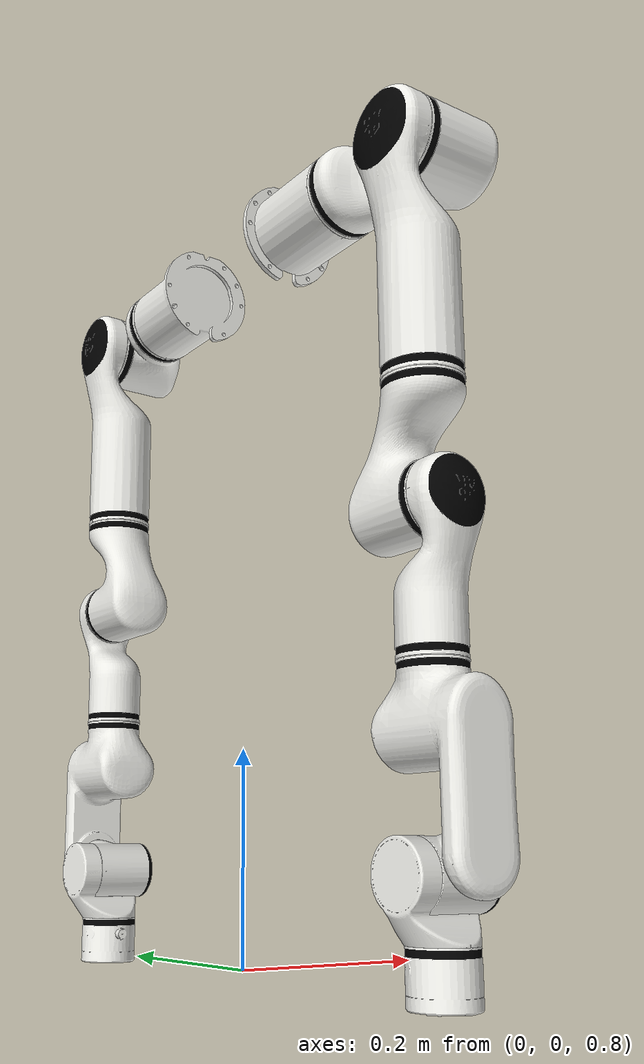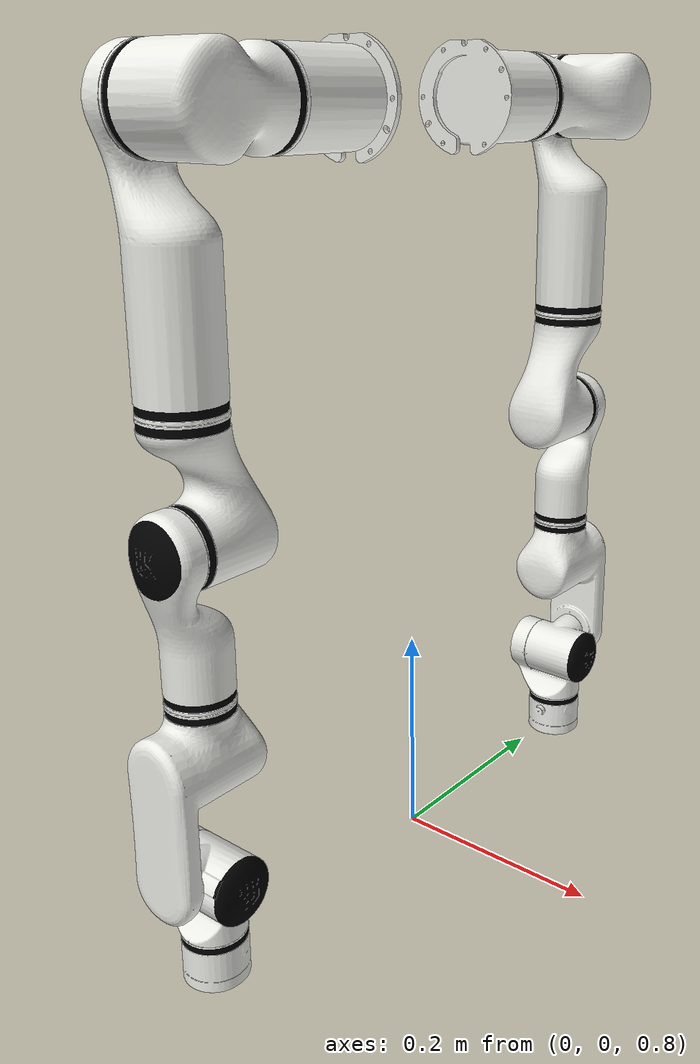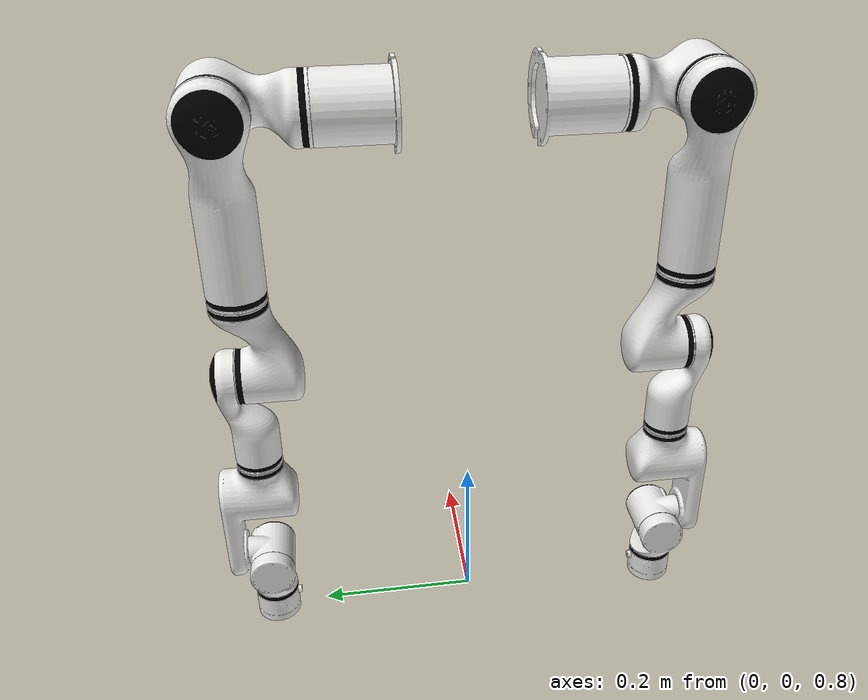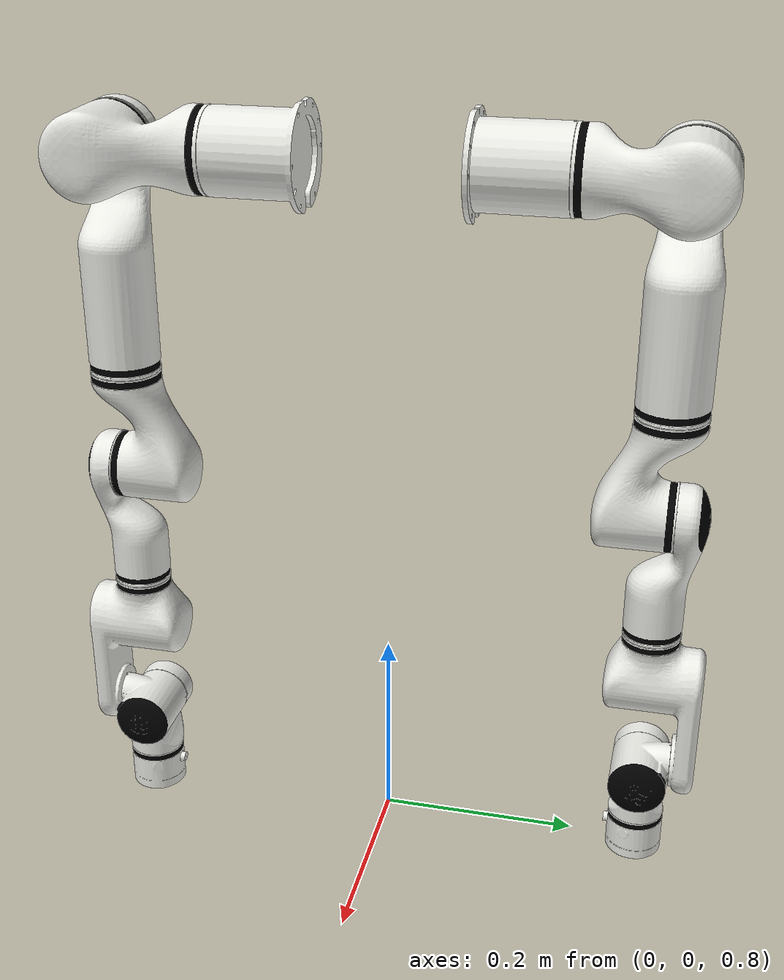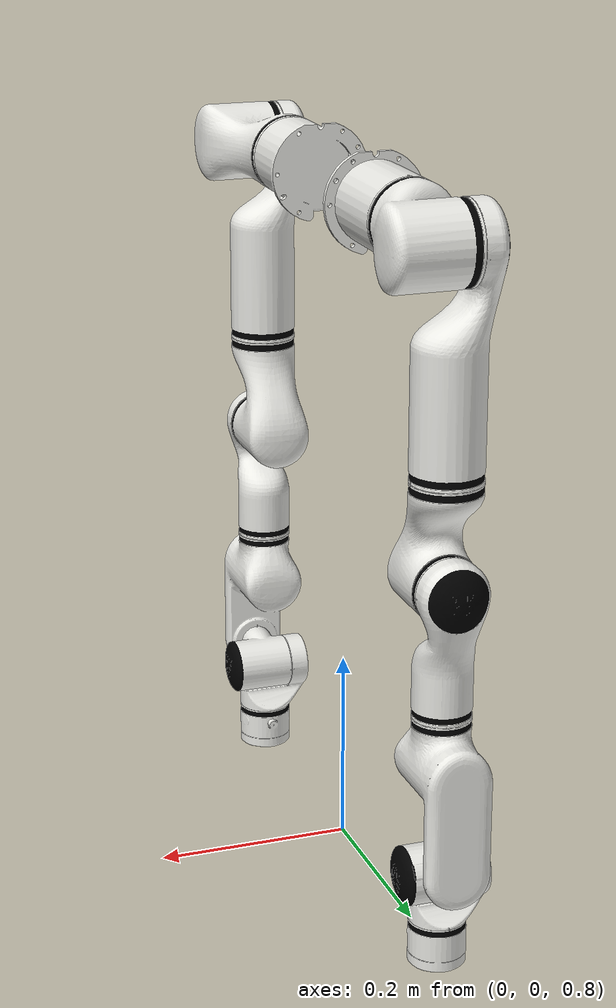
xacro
<?xml version='1.0' encoding='utf-8'?>
<robot name="rm_rx75_dual" xmlns:xacro="http://www.ros.org/wiki/xacro">
  <xacro:arg name="right_rpy" default="-1.5707963267949 -1.5707963267949 0" />
  <xacro:arg name="right_xyz" default="0 0.075 1.5" />
  <xacro:arg name="left_rpy" default="1.5707963267949 -1.5707963267949 0" />
  <xacro:arg name="left_xyz" default="0 -0.075 1.5" />
  <link name="base_root" />
  <joint name="left_base_mount" type="fixed">
    <origin rpy="$(arg left_rpy)" xyz="$(arg left_xyz)" />
    <parent link="base_root" />
    <child link="left_base_link" />
  </joint>
  <joint name="right_base_mount" type="fixed">
    <origin rpy="$(arg right_rpy)" xyz="$(arg right_xyz)" />
    <parent link="base_root" />
    <child link="right_base_link" />
  </joint>
  <link name="left_base_link">
    <inertial>
      <origin rpy="0 0 0" xyz="3.53515085054106E-05 -0.000344112995119752 0.0504743485122056" />
      <mass value="0.651913537431336" />
      <inertia ixx="0.000695985861740904" ixy="2.0688102027219E-06" ixz="2.11905962706114E-06" iyy="0.00068109446381714" iyz="-6.83989723679503E-06" izz="0.000727115124181003" />
    </inertial>
    <collision>
      <origin rpy="0 0 0" xyz="0 0 0" />
      <geometry>
        <mesh filename="package://rm_description/meshes/rm_rx75_arm/rm_rx75_left_arm/base_link.STL" />
      </geometry>
    </collision>
    <visual>
      <origin xyz="0 0 0" rpy="0 0 0" />
      <geometry>
        <mesh filename="package://rm_description/meshes/dae/rxl75/base_link.dae" />
      </geometry>
    </visual>
  </link>
  <link name="left_Link1">
    <inertial>
      <origin rpy="0 0 0" xyz="0.488E-3 -13.727E-3 -10.765E-3" />
      <mass value="1.559" />
      <inertia ixx="2661.9E-6" ixy="-31.029E-6" ixz="9.34E-6" iyy="2302.5E-6" iyz="151.466E-6" izz="1676.59E-6" />
    </inertial>
    <collision>
      <origin rpy="0 0 0" xyz="0 0 0" />
      <geometry>
        <mesh filename="package://rm_description/meshes/rm_rx75_arm/rm_rx75_left_arm/Link1.STL" />
      </geometry>
    </collision>
    <visual>
      <origin xyz="0 0 0" rpy="0 0 0" />
      <geometry>
        <mesh filename="package://rm_description/meshes/dae/rxl75/Link1.dae" />
      </geometry>
    </visual>
  </link>
  <joint name="left_joint1" type="revolute">
    <origin rpy="0 0 0" xyz="0 0 0.191500058118611" />
    <parent link="left_base_link" />
    <child link="left_Link1" />
    <axis xyz="0 0 1" />
    <limit effort="60" lower="-3.0194" upper="3.0194" velocity="3.14" />
  </joint>
  <link name="left_Link2">
    <inertial>
      <origin rpy="0 0 0" xyz="-0.112E-3 -148.134E-3 4.111E-3" />
      <mass value="1.394" />
      <inertia ixx="6927.3E-6" ixy="0" ixz="-2.6E-6" iyy="1045E-6" iyz="-801E-6" izz="6864E-6" />
    </inertial>
    <collision>
      <origin rpy="0 0 0" xyz="0 0 0" />
      <geometry>
        <mesh filename="package://rm_description/meshes/rm_rx75_arm/rm_rx75_left_arm/Link2L.STL" />
      </geometry>
    </collision>
    <visual>
      <origin xyz="0 0 0" rpy="0 0 0" />
      <geometry>
        <mesh filename="package://rm_description/meshes/dae/rxl75/Link2.dae" />
      </geometry>
    </visual>
  </link>
  <joint name="left_joint2" type="revolute">
    <origin rpy="-1.57079632679489 -1.5707963267949 0" xyz="0 0 0" />
    <parent link="left_Link1" />
    <child link="left_Link2" />
    <axis xyz="0 0 1" />
    <limit effort="60" lower="-0.6109" upper="3.1067" velocity="3.14" />
  </joint>
  <link name="left_Link3">
    <inertial>
      <origin rpy="0 0 0" xyz="0.032E-3 15.649E-3 -11.225E-3" />
      <mass value="1.117" />
      <inertia ixx="1757E-6" ixy="0" ixz="0" iyy="1468E-6" iyz="-112E-6" izz="979E-6" />
    </inertial>
    <collision>
      <origin rpy="0 0 0" xyz="0 0 0" />
      <geometry>
        <mesh filename="package://rm_description/meshes/rm_rx75_arm/rm_rx75_left_arm/Link3.STL" />
      </geometry>
    </collision>
    <visual>
      <origin xyz="0 0 0" rpy="0 0 0" />
      <geometry>
        <mesh filename="package://rm_description/meshes/dae/rxl75/Link3.dae" />
      </geometry>
    </visual>
  </link>
  <joint name="left_joint3" type="revolute">
    <origin rpy="1.5707963267949 -1.5707963267949 0" xyz="0 -0.322 0" />
    <parent link="left_Link2" />
    <child link="left_Link3" />
    <axis xyz="0 0 1" />
    <limit effort="30" lower="-3.0194" upper="3.0194" velocity="3.925" />
  </joint>
  <link name="left_Link4">
    <inertial>
      <origin rpy="0 0 0" xyz="-0.001E-3 85.449E-3 4.844E-3" />
      <mass value="0.673" />
      <inertia ixx="1283E-6" ixy="0" ixz="0" iyy="344E-6" iyz="229E-6" izz="1257E-6" />
    </inertial>
    <collision>
      <origin rpy="0 0 0" xyz="0 0 0" />
      <geometry>
        <mesh filename="package://rm_description/meshes/rm_rx75_arm/rm_rx75_left_arm/Link4.STL" />
      </geometry>
    </collision>
    <visual>
      <origin xyz="0 0 0" rpy="0 0 0" />
      <geometry>
        <mesh filename="package://rm_description/meshes/dae/rxl75/Link4.dae" />
      </geometry>
    </visual>
  </link>
  <joint name="left_joint4" type="revolute">
    <origin rpy="1.5707963267949 0 0" xyz="0 0 0" />
    <parent link="left_Link3" />
    <child link="left_Link4" />
    <axis xyz="0 0 1" />
    <limit effort="30" lower="-2.2689" upper="0.2618" velocity="3.925" />
  </joint>
  <link name="left_Link5">
    <inertial>
      <origin rpy="0 0 0" xyz="-0.001E-3 -14.741E-3 -80.627E-3" />
      <mass value="1.13" />
      <inertia ixx="2343E-6" ixy="0" ixz="0" iyy="1934E-6" iyz="443E-6" izz="1091E-6" />
    </inertial>
    <collision>
      <origin rpy="0 0 0" xyz="0 0 0" />
      <geometry>
        <mesh filename="package://rm_description/meshes/rm_rx75_arm/rm_rx75_left_arm/Link5.STL" />
      </geometry>
    </collision>
    <visual>
      <origin xyz="0 0 0" rpy="0 0 0" />
      <geometry>
        <mesh filename="package://rm_description/meshes/dae/rxl75/Link5.dae" />
      </geometry>
    </visual>
  </link>
  <joint name="left_joint5" type="revolute">
    <origin rpy="-1.5707963267949 0 0" xyz="0 0.2755 0" />
    <parent link="left_Link4" />
    <child link="left_Link5" />
    <axis xyz="0 0 1" />
    <limit effort="10" lower="-3.0194" upper="3.0194" velocity="3.925" />
  </joint>
  <link name="left_Link6">
    <inertial>
      <origin rpy="0 0 0" xyz="13.909E-3 -1.02E-3 3.245E-3" />
      <mass value="0.559" />
      <inertia ixx="354E-6" ixy="0" ixz="27E-6" iyy="288E-6" iyz="0" izz="312E-6" />
    </inertial>
    <collision>
      <origin rpy="0 0 0" xyz="0 0 0" />
      <geometry>
        <mesh filename="package://rm_description/meshes/rm_rx75_arm/rm_rx75_left_arm/Link6.STL" />
      </geometry>
    </collision>
    <visual>
      <origin xyz="0 0 0" rpy="0 0 0" />
      <geometry>
        <mesh filename="package://rm_description/meshes/dae/rxl75/Link6.dae" />
      </geometry>
    </visual>
  </link>
  <joint name="left_joint6" type="revolute">
    <origin rpy="1.5708 -1.5708 0" xyz="0 0 0" />
    <parent link="left_Link5" />
    <child link="left_Link6" />
    <axis xyz="0 0 1" />
    <limit effort="10" lower="-0.9599" upper="0.9599" velocity="3.925" />
  </joint>
  <link name="left_Link7">
    <inertial>
      <origin rpy="0 0 0" xyz="20E-3 -71E-3 4.396E-3" />
      <mass value="0.483" />
      <inertia ixx="810E-6" ixy="154E-6" ixz="41E-6" iyy="1152E-6" iyz="-133E-6" izz="1640E-6" />
    </inertial>
    <collision>
      <origin rpy="0 0 0" xyz="0 0 0" />
      <geometry>
        <mesh filename="package://rm_description/meshes/rm_rx75_arm/rm_rx75_left_arm/Link7.STL" />
      </geometry>
    </collision>
    <collision>
      <origin rpy="1.57079632679489 0 0" xyz="0 -0.0962 0" />
      <geometry>
        <mesh filename="package://rm_description/meshes/rm_rx75_arm/rm_rx75_left_arm/Link8.STL" />
      </geometry>
    </collision>
    <visual>
      <origin xyz="0 0 0" rpy="0 0 0" />
      <geometry>
        <mesh filename="package://rm_description/meshes/dae/rxl75/Link7-6FB.dae" />
      </geometry>
    </visual>
  </link>
  <joint name="left_joint7" type="revolute">
    <origin rpy="1.5708 -1.5708 0" xyz="0.0155 0 0" />
    <parent link="left_Link6" />
    <child link="left_Link7" />
    <axis xyz="0 0 1" />
    <limit effort="10" lower="-1.9024" upper="0.6109" velocity="3.925" />
  </joint>
  <link name="left_tool0">
    <visual>
      <origin xyz="0 0 0" rpy="0 0 0" />
      <geometry>
        <mesh filename="package://rm_description/meshes/dae/rxl75/Link8.dae" />
      </geometry>
    </visual>
  </link>
  <joint name="left_tool0_fixed" type="fixed">
    <origin rpy="1.57079632679489 0 0" xyz="0 -0.0962 0" />
    <parent link="left_Link7" />
    <child link="left_tool0" />
  </joint>
  <link name="right_base_link">
    <inertial>
      <origin rpy="0 0 0" xyz="0.000247231299312718 0.000107089054159845 0.0504743485121995" />
      <mass value="0.651913537431184" />
      <inertia ixx="0.000693039456720002" ixy="-3.66140304381868E-07" ixz="6.39371684073924E-06" iyy="0.000684040868837464" iyz="2.26157110425163E-06" izz="0.00072711512418086" />
    </inertial>
    <collision>
      <origin rpy="0 0 0" xyz="0 0 0" />
      <geometry>
        <mesh filename="package://rm_description/meshes/rm_rx75_arm/rm_rx75_right_arm/base_link.STL" />
      </geometry>
    </collision>
    <visual>
      <origin xyz="0 0 0" rpy="0 0 0" />
      <geometry>
        <mesh filename="package://rm_description/meshes/dae/rxr75/base_link.dae" />
      </geometry>
    </visual>
  </link>
  <link name="right_Link1">
    <inertial>
      <origin rpy="0 0 0" xyz="0.018E-3 -13.6E-3 -10.1E-3" />
      <mass value="1.559" />
      <inertia ixx="2693E-6" ixy="0" ixz="0" iyy="2324E-6" iyz="193E-6" izz="1662E-6" />
    </inertial>
    <collision>
      <origin rpy="0 0 0" xyz="0 0 0" />
      <geometry>
        <mesh filename="package://rm_description/meshes/rm_rx75_arm/rm_rx75_right_arm/Link1.STL" />
      </geometry>
    </collision>
    <visual>
      <origin xyz="0 0 0" rpy="0 0 0" />
      <geometry>
        <mesh filename="package://rm_description/meshes/dae/rxr75/Link1.dae" />
      </geometry>
    </visual>
  </link>
  <joint name="right_joint1" type="revolute">
    <origin rpy="0 0 0" xyz="0 0 0.1915" />
    <parent link="right_base_link" />
    <child link="right_Link1" />
    <axis xyz="0 0 1" />
    <limit effort="60" lower="-3.0194" upper="3.0194" velocity="3.14" />
  </joint>
  <link name="right_Link2">
    <inertial>
      <origin rpy="0 0 0" xyz="-0.197E-3 -149.264E-3 -3.905E-3" />
      <mass value="1.384" />
      <inertia ixx="6726E-6" ixy="0" ixz="4E-6" iyy="1028E-6" iyz="750E-6" izz="6677E-6" />
    </inertial>
    <collision>
      <origin rpy="0 0 0" xyz="0 0 0" />
      <geometry>
        <mesh filename="package://rm_description/meshes/rm_rx75_arm/rm_rx75_right_arm/Link2.STL" />
      </geometry>
    </collision>
    <visual>
      <origin xyz="0 0 0" rpy="0 0 0" />
      <geometry>
        <mesh filename="package://rm_description/meshes/dae/rxr75/Link2.dae" />
      </geometry>
    </visual>
  </link>
  <joint name="right_joint2" type="revolute">
    <origin rpy="-1.57079632679489 -1.5707963267949 0" xyz="0 0 0" />
    <parent link="right_Link1" />
    <child link="right_Link2" />
    <axis xyz="0 0 1" />
    <limit effort="60" lower="-0.6109" upper="3.1067" velocity="3.14" />
  </joint>
  <link name="right_Link3">
    <inertial>
      <origin rpy="0 0 0" xyz="-0.154E-3 -15.652E-3 -11.241E-3" />
      <mass value="1.117" />
      <inertia ixx="1756E-6" ixy="-4.257E-6" ixz="0" iyy="1468E-6" iyz="112E-6" izz="980E-6" />
    </inertial>
    <collision>
      <origin rpy="0 0 0" xyz="0 0 0" />
      <geometry>
        <mesh filename="package://rm_description/meshes/rm_rx75_arm/rm_rx75_right_arm/Link3.STL" />
      </geometry>
    </collision>
    <visual>
      <origin xyz="0 0 0" rpy="0 0 0" />
      <geometry>
        <mesh filename="package://rm_description/meshes/dae/rxr75/Link3.dae" />
      </geometry>
    </visual>
  </link>
  <joint name="right_joint3" type="revolute">
    <origin rpy="1.5707963267949 1.5707963267949 0" xyz="0 -0.322 0" />
    <parent link="right_Link2" />
    <child link="right_Link3" />
    <axis xyz="0 0 1" />
    <limit effort="30" lower="-3.0194" upper="3.0194" velocity="3.925" />
  </joint>
  <link name="right_Link4">
    <inertial>
      <origin rpy="0 0 0" xyz="0 86.537E-3 -1.411E-3" />
      <mass value="0.665" />
      <inertia ixx="1209E-6" ixy="0.112E-6" ixz="0" iyy="332E-6" iyz="-205E-6" izz="1191E-6" />
    </inertial>
    <collision>
      <origin rpy="0 0 0" xyz="0 0 0" />
      <geometry>
        <mesh filename="package://rm_description/meshes/rm_rx75_arm/rm_rx75_right_arm/Link4.STL" />
      </geometry>
    </collision>
    <visual>
      <origin xyz="0 0 0" rpy="0 0 0" />
      <geometry>
        <mesh filename="package://rm_description/meshes/dae/rxr75/Link4.dae" />
      </geometry>
    </visual>
  </link>
  <joint name="right_joint4" type="revolute">
    <origin rpy="1.5707963267949 0 0" xyz="0 0 0" />
    <parent link="right_Link3" />
    <child link="right_Link4" />
    <axis xyz="0 0 1" />
    <limit effort="30" lower="-2.2689" upper="0.2618" velocity="3.925" />
  </joint>
  <link name="right_Link5">
    <inertial>
      <origin rpy="0 0 0" xyz="0 14.739E-3 -80.627E-3" />
      <mass value="1.13" />
      <inertia ixx="2343E-6" ixy="0" ixz="0" iyy="1934E-6" iyz="-443E-6" izz="1091E-6" />
    </inertial>
    <collision>
      <origin rpy="0 0 0" xyz="0 0 0" />
      <geometry>
        <mesh filename="package://rm_description/meshes/rm_rx75_arm/rm_rx75_right_arm/Link5.STL" />
      </geometry>
    </collision>
    <visual>
      <origin xyz="0 0 0" rpy="0 0 0" />
      <geometry>
        <mesh filename="package://rm_description/meshes/dae/rxr75/Link5.dae" />
      </geometry>
    </visual>
  </link>
  <joint name="right_joint5" type="revolute">
    <origin rpy="-1.5707963267949 0 0" xyz="0 0.2755 0" />
    <parent link="right_Link4" />
    <child link="right_Link5" />
    <axis xyz="0 0 1" />
    <limit effort="10" lower="-3.0194" upper="3.0194" velocity="3.925" />
  </joint>
  <link name="right_Link6">
    <inertial>
      <origin rpy="0 0 0" xyz="13.908E-3 -1.017E-3 -3.245E-3" />
      <mass value="0.559" />
      <inertia ixx="354E-6" ixy="0" ixz="-27E-6" iyy="288E-6" iyz="0" izz="312E-6" />
    </inertial>
    <collision>
      <origin rpy="0 0 0" xyz="0 0 0" />
      <geometry>
        <mesh filename="package://rm_description/meshes/rm_rx75_arm/rm_rx75_right_arm/Link6.STL" />
      </geometry>
    </collision>
    <visual>
      <origin xyz="0 0 0" rpy="0 0 0" />
      <geometry>
        <mesh filename="package://rm_description/meshes/dae/rxr75/Link6.dae" />
      </geometry>
    </visual>
  </link>
  <joint name="right_joint6" type="revolute">
    <origin rpy="1.5707963267949 -1.5707963267949 0" xyz="0 0 0" />
    <parent link="right_Link5" />
    <child link="right_Link6" />
    <axis xyz="0 0 1" />
    <limit effort="10" lower="-0.9599" upper="0.9599" velocity="3.925" />
  </joint>
  <link name="right_Link7">
    <inertial>
      <origin rpy="0 0 0" xyz="20E-3 71E-3 4.23E-3" />
      <mass value="0.483" />
      <inertia ixx="810E-6" ixy="-155E-6" ixz="42E-6" iyy="1152E-6" iyz="132E-6" izz="1640E-6" />
    </inertial>
    <collision>
      <origin rpy="0 0 0" xyz="0 0 0" />
      <geometry>
        <mesh filename="package://rm_description/meshes/rm_rx75_arm/rm_rx75_right_arm/Link7.STL" />
      </geometry>
    </collision>
    <collision>
      <origin rpy="-1.5707963267949 0 0" xyz="0 0.0962 0" />
      <geometry>
        <mesh filename="package://rm_description/meshes/rm_rx75_arm/rm_rx75_right_arm/Link8.STL" />
      </geometry>
    </collision>
    <visual>
      <origin xyz="0 0 0" rpy="0 0 0" />
      <geometry>
        <mesh filename="package://rm_description/meshes/dae/rxr75/Link7-6FB.dae" />
      </geometry>
    </visual>
  </link>
  <joint name="right_joint7" type="revolute">
    <origin rpy="1.5708 1.5708 0" xyz="0.0155 0 0" />
    <parent link="right_Link6" />
    <child link="right_Link7" />
    <axis xyz="0 0 1" />
    <limit effort="10" lower="-0.6109" upper="1.9024" velocity="3.925" />
  </joint>
  <link name="right_tool0">
    <visual>
      <origin xyz="0 0 0" rpy="0 0 0" />
      <geometry>
        <mesh filename="package://rm_description/meshes/dae/rxr75/Link8.dae" />
      </geometry>
    </visual>
  </link>
  <joint name="right_tool0_fixed" type="fixed">
    <origin rpy="-1.5707963267949 0 0" xyz="0 0.0962 0" />
    <parent link="right_Link7" />
    <child link="right_tool0" />
  </joint>
</robot>
